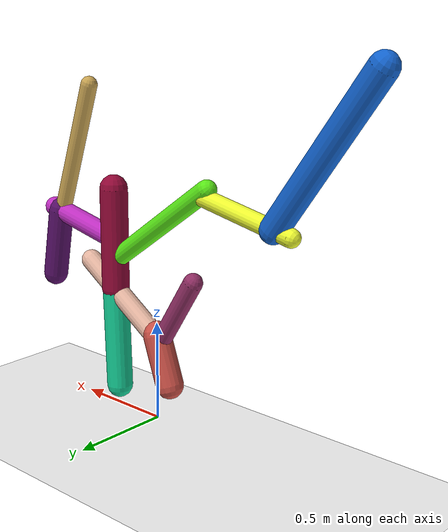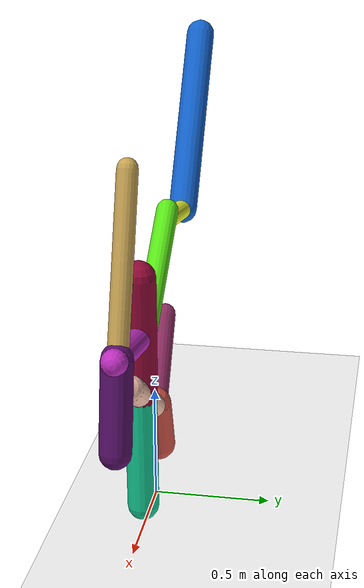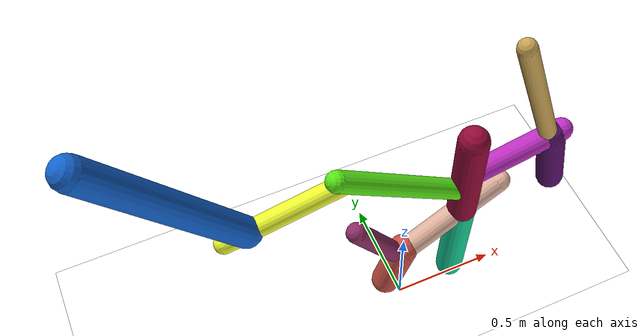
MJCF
<mujoco model="morphology">
  <option timestep="0.01"/>
  <default>
    <default class="/"/>
    <default class="0/"/>
    <default class="0/1/"/>
    <default class="0/1/2/"/>
    <default class="0/1/2/3/"/>
    <default class="0/1/2/3/4/"/>
    <default class="0/1/2/3/5/"/>
    <default class="0/1/2/6/"/>
    <default class="0/1/2/6/7/"/>
    <default class="0/1/2/6/7/8/"/>
    <default class="0/1/2/9/"/>
    <default class="0/10/"/>
  </default>
  <asset>
    <texture name="texplane" type="2d" builtin="checker" rgb1="0.10000000000000001 0.20000000000000001 0.29999999999999999" rgb2="0.20000000000000001 0.29999999999999999 0.40000000000000002" width="300" height="300"/>
    <material name="MatPlane" class="/" texture="texplane" texrepeat="20 20" specular="1" shininess="1" reflectance="0.5"/>
  </asset>
  <worldbody>
    <light name="//unnamed_light_0" class="/" directional="true" pos="0 0 1.5" dir="0 0 -1.3" cutoff="100" exponent="1" diffuse="1 1 1" specular="0.10000000000000001 0.10000000000000001 0.10000000000000001"/>
    <geom name="ground" class="/" type="plane" size="15 15 0.5" material="MatPlane" rgba="1 1 1 1"/>
    <site name="body" class="/" size="9.9999999999999995e-07 9.9999999999999995e-07 9.9999999999999995e-07" pos="0 0 0.43830475807189939"/>
    <body pos="0 0 0.43830475807189939" name="0/">
      <joint name="0/rootx/" class="/" type="slide" axis="1 0 0" limited="false" stiffness="0" armature="0" damping="0"/>
      <joint name="0/rootz/" class="/" type="slide" axis="0 0 1" limited="false" stiffness="0" armature="0" damping="0"/>
      <joint name="0/rooty/" class="/" type="hinge" axis="0 1 0" limited="false" stiffness="0" armature="0" damping="0"/>
      <geom name="0/geom" class="0/" type="capsule" contype="1" conaffinity="1" condim="3" size="0.069638368132352926" rgba="0.80419331895119217 0.32193984707813239 0.28281217191885544 1" friction="0.59999999999999998 0.10000000000000001 0.10000000000000001" fromto="0 0 0 -0.083722043477832297 0 -0.24235499207711131"/>
      <site name="0/end0" class="0/" size="0.0050000000000000001" pos="-0.083722043477832297 0 -0.24235499207711131"/>
      <site name="0/attach1" class="0/" size="9.9999999999999995e-07 9.9999999999999995e-07 9.9999999999999995e-07" pos="-0.0076770327835596619 0 -0.022223146284382819"/>
      <body pos="-0.0076770327835596619 0 -0.022223146284382819" name="0/1/">
        <joint name="0/1/joint/" class="0/" type="hinge" axis="0 1 0" limited="true" range="-68.230057510457101 68.230057510457101"/>
        <geom name="0/1/geom" class="0/1/" type="capsule" contype="1" conaffinity="1" condim="3" size="0.052511374750077791" rgba="0.91295472177583081 0.72340715912134468 0.64278700760841756 1" friction="0.59999999999999998 0.10000000000000001 0.10000000000000001" fromto="0 0 0 0.47326967225514149 0 0.31614919974996369"/>
        <site name="0/1/end1" class="0/1/" size="0.0050000000000000001" pos="0.47326967225514149 0 0.31614919974996369"/>
        <site name="0/1/attach2" class="0/1/" size="9.9999999999999995e-07 9.9999999999999995e-07 9.9999999999999995e-07" pos="0.29729127694747448 0 0.19859375068706997"/>
        <body pos="0.29729127694747448 0 0.19859375068706997" name="0/1/2/">
          <joint name="0/1/2/joint/" class="0/1/" type="hinge" axis="0 1 0" limited="true" range="-61.02118040346086 61.02118040346086"/>
          <geom name="0/1/2/geom" class="0/1/2/" type="capsule" contype="1" conaffinity="1" condim="3" size="0.069887416376157738" rgba="0.58368427356273056 0.034887159905507614 0.2214889989469353 1" friction="0.59999999999999998 0.10000000000000001 0.10000000000000001" fromto="0 0 0 0.0011485039347062242 0 0.51391503798549087"/>
          <site name="0/1/2/end2" class="0/1/2/" size="0.0050000000000000001" pos="0.0011485039347062242 0 0.51391503798549087"/>
          <site name="0/1/2/attach3" class="0/1/2/" size="9.9999999999999995e-07 9.9999999999999995e-07 9.9999999999999995e-07" pos="0.00057660123273096876 0 0.25800873246221256"/>
          <body pos="0.00057660123273096876 0 0.25800873246221256" name="0/1/2/3/">
            <joint name="0/1/2/3/joint/" class="0/1/2/" type="hinge" axis="0 1 0" limited="true" range="-42.683390471554354 42.683390471554354"/>
            <geom name="0/1/2/3/geom" class="0/1/2/3/" type="capsule" contype="1" conaffinity="1" condim="3" size="0.052384822614386144" rgba="0.75681715885434864 0.1830598699390783 0.76494731854670295 1" friction="0.59999999999999998 0.10000000000000001 0.10000000000000001" fromto="0 0 0 0.45056382153684327 0 0.096880767223097575"/>
            <site name="0/1/2/3/end3" class="0/1/2/3/" size="0.0050000000000000001" pos="0.45056382153684327 0 0.096880767223097575"/>
            <site name="0/1/2/3/attach4" class="0/1/2/3/" size="9.9999999999999995e-07 9.9999999999999995e-07 9.9999999999999995e-07" pos="0.40389724023565676 0 0.086846463570583149"/>
            <body pos="0.40389724023565676 0 0.086846463570583149" name="0/1/2/3/4/">
              <joint name="0/1/2/3/4/joint/" class="0/1/2/3/" type="hinge" axis="0 1 0" limited="true" range="-50.043048171053293 50.043048171053293"/>
              <geom name="0/1/2/3/4/geom" class="0/1/2/3/4/" type="capsule" contype="1" conaffinity="1" condim="3" size="0.063513046375385601" rgba="0.34336065413331562 0.063925923098232196 0.41203119874587268 1" friction="0.59999999999999998 0.10000000000000001 0.10000000000000001" fromto="0 0 0 0.063689877096429259 0 -0.35505731952540498"/>
              <site name="0/1/2/3/4/end4" class="0/1/2/3/4/" size="0.0050000000000000001" pos="0.063689877096429259 0 -0.35505731952540498"/>
            </body>
            <site name="0/1/2/3/attach5" class="0/1/2/3/" size="9.9999999999999995e-07 9.9999999999999995e-07 9.9999999999999995e-07" pos="0.39097462965933449 0 0.084067828519750407"/>
            <body pos="0.39097462965933449 0 0.084067828519750407" name="0/1/2/3/5/">
              <joint name="0/1/2/3/5/joint/" class="0/1/2/3/" type="hinge" axis="0 1 0" limited="true" range="-62.633285692380497 62.633285692380497"/>
              <geom name="0/1/2/3/5/geom" class="0/1/2/3/5/" type="capsule" contype="1" conaffinity="1" condim="3" size="0.041858336123397788" rgba="0.79601901368772343 0.65123155573789848 0.33230598322007943 1" friction="0.59999999999999998 0.10000000000000001 0.10000000000000001" fromto="0 0 0 -0.23000101409871276 0 0.66668323794550832"/>
              <site name="0/1/2/3/5/end5" class="0/1/2/3/5/" size="0.0050000000000000001" pos="-0.23000101409871276 0 0.66668323794550832"/>
            </body>
          </body>
          <site name="0/1/2/attach6" class="0/1/2/" size="9.9999999999999995e-07 9.9999999999999995e-07 9.9999999999999995e-07" pos="0.00033504447581397215 0 0.14992059610036026"/>
          <body pos="0.00033504447581397215 0 0.14992059610036026" name="0/1/2/6/">
            <joint name="0/1/2/6/joint/" class="0/1/2/" type="hinge" axis="0 1 0" limited="true" range="-58.982561243146506 58.982561243146506"/>
            <geom name="0/1/2/6/geom" class="0/1/2/6/" type="capsule" contype="1" conaffinity="1" condim="3" size="0.04799152765896493" rgba="0.35481106957961717 0.91706179474857286 0.09082713302076928 1" friction="0.59999999999999998 0.10000000000000001 0.10000000000000001" fromto="0 0 0 -0.61137479378019288 0 0.44414567996544174"/>
            <site name="0/1/2/6/end6" class="0/1/2/6/" size="0.0050000000000000001" pos="-0.61137479378019288 0 0.44414567996544174"/>
            <site name="0/1/2/6/attach7" class="0/1/2/6/" size="9.9999999999999995e-07 9.9999999999999995e-07 9.9999999999999995e-07" pos="-0.5659750588978677 0 0.41116411722405943"/>
            <body pos="-0.5659750588978677 0 0.41116411722405943" name="0/1/2/6/7/">
              <geom name="0/1/2/6/7/geom" class="0/1/2/6/7/" type="capsule" contype="1" conaffinity="1" condim="3" size="0.043463905976799749" rgba="0.94118334214664301 0.9936926848578419 0.19022176449679284 1" friction="0.59999999999999998 0.10000000000000001 0.10000000000000001" fromto="0 0 0 -0.5237819454033199 0 -0.1058598114749788"/>
              <site name="0/1/2/6/7/end7" class="0/1/2/6/7/" size="0.0050000000000000001" pos="-0.5237819454033199 0 -0.1058598114749788"/>
              <site name="0/1/2/6/7/attach8" class="0/1/2/6/7/" size="9.9999999999999995e-07 9.9999999999999995e-07 9.9999999999999995e-07" pos="-0.42929899014339767 0 -0.086764178417767235"/>
              <body pos="-0.42929899014339767 0 -0.086764178417767235" name="0/1/2/6/7/8/">
                <joint name="0/1/2/6/7/8/joint/" class="0/1/2/6/7/" type="hinge" axis="0 1 0" limited="true" range="-43.854839210817346 43.854839210817346"/>
                <geom name="0/1/2/6/7/8/geom" class="0/1/2/6/7/8/" type="capsule" contype="1" conaffinity="1" condim="3" size="0.064859474062396186" rgba="0.074920799767472013 0.39797535493008152 0.82229724542407057 1" friction="0.59999999999999998 0.10000000000000001 0.10000000000000001" fromto="0 0 0 -0.50274413246561389 0 0.71668507393774306"/>
                <site name="0/1/2/6/7/8/end8" class="0/1/2/6/7/8/" size="0.0050000000000000001" pos="-0.50274413246561389 0 0.71668507393774306"/>
              </body>
            </body>
          </body>
          <site name="0/1/2/attach9" class="0/1/2/" size="9.9999999999999995e-07 9.9999999999999995e-07 9.9999999999999995e-07" pos="6.0353412170007746e-06 0 0.0027006025117221068"/>
          <body pos="6.0353412170007746e-06 0 0.0027006025117221068" name="0/1/2/9/">
            <joint name="0/1/2/9/joint/" class="0/1/2/" type="hinge" axis="0 1 0" limited="true" range="-33.587332552908634 33.587332552908634"/>
            <geom name="0/1/2/9/geom" class="0/1/2/9/" type="capsule" contype="1" conaffinity="1" condim="3" size="0.066326076424987432" rgba="0.079010283164080208 0.80532804270038816 0.58780358286532741 1" friction="0.59999999999999998 0.10000000000000001 0.10000000000000001" fromto="0 0 0 -0.016569195010343485 0 -0.51737597717667416"/>
            <site name="0/1/2/9/end9" class="0/1/2/9/" size="0.0050000000000000001" pos="-0.016569195010343485 0 -0.51737597717667416"/>
          </body>
        </body>
      </body>
      <site name="0/attach10" class="0/" size="9.9999999999999995e-07 9.9999999999999995e-07 9.9999999999999995e-07" pos="-0.015680713161635156 0 -0.045391858060150864"/>
      <body pos="-0.015680713161635156 0 -0.045391858060150864" name="0/10/">
        <joint name="0/10/joint/" class="0/" type="hinge" axis="0 1 0" limited="true" range="-30.483441799275745 30.483441799275745"/>
        <geom name="0/10/geom" class="0/10/" type="capsule" contype="1" conaffinity="1" condim="3" size="0.047662912053506624" rgba="0.570956510075742 0.18568194057134957 0.39753804789861547 1" friction="0.59999999999999998 0.10000000000000001 0.10000000000000001" fromto="0 0 0 -0.22358334107670963 0 0.36100029038587289"/>
        <site name="0/10/end10" class="0/10/" size="0.0050000000000000001" pos="-0.22358334107670963 0 0.36100029038587289"/>
      </body>
      <camera name="0/side" class="0/" mode="trackcom" pos="0.40000000000000002 -4 0.20000000000000001" quat="0.70699999999999996 0.70699999999999996 0 0"/>
    </body>
  </worldbody>
  <actuator>
    <motor name="0/1/motor" class="0/1/" ctrllimited="true" ctrlrange="-1 1" gear="68" joint="0/1/joint/"/>
    <motor name="0/1/2/motor" class="0/1/2/" ctrllimited="true" ctrlrange="-1 1" gear="63" joint="0/1/2/joint/"/>
    <motor name="0/1/2/3/motor" class="0/1/2/3/" ctrllimited="true" ctrlrange="-1 1" gear="68" joint="0/1/2/3/joint/"/>
    <motor name="0/1/2/3/4/motor" class="0/1/2/3/4/" ctrllimited="true" ctrlrange="-1 1" gear="76" joint="0/1/2/3/4/joint/"/>
    <motor name="0/1/2/3/5/motor" class="0/1/2/3/5/" ctrllimited="true" ctrlrange="-1 1" gear="69" joint="0/1/2/3/5/joint/"/>
    <motor name="0/1/2/6/motor" class="0/1/2/6/" ctrllimited="true" ctrlrange="-1 1" gear="55" joint="0/1/2/6/joint/"/>
    <motor name="0/1/2/6/7/8/motor" class="0/1/2/6/7/8/" ctrllimited="true" ctrlrange="-1 1" gear="76" joint="0/1/2/6/7/8/joint/"/>
    <motor name="0/1/2/9/motor" class="0/1/2/9/" ctrllimited="true" ctrlrange="-1 1" gear="57" joint="0/1/2/9/joint/"/>
    <motor name="0/10/motor" class="0/10/" ctrllimited="true" ctrlrange="-1 1" gear="74" joint="0/10/joint/"/>
  </actuator>
  <sensor>
    <subtreelinvel name="velocity" body="0/"/>
  </sensor>
</mujoco>
